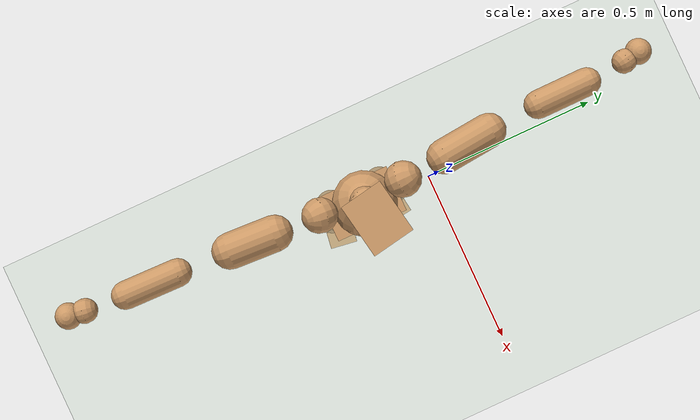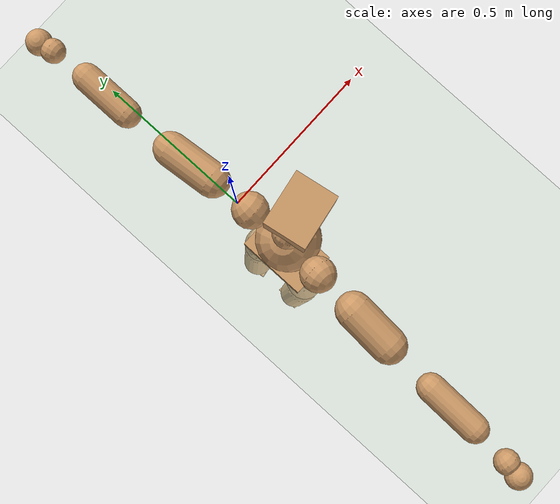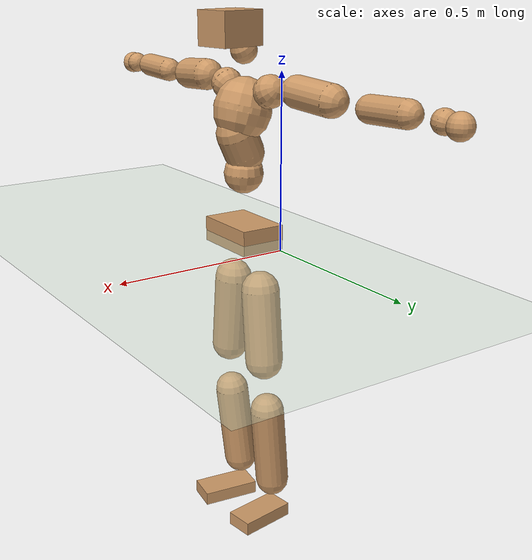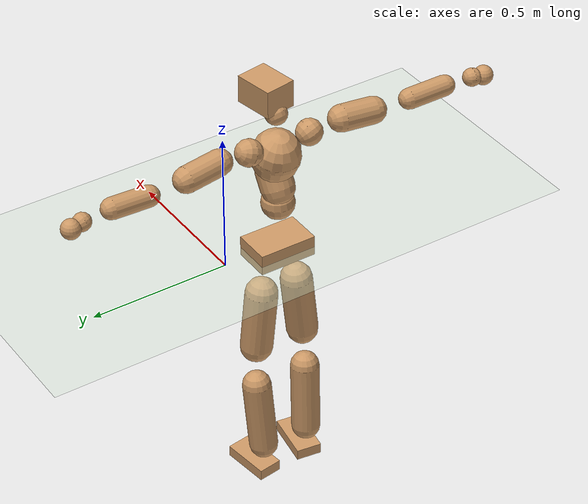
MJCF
<mujoco model="humanoid">
  <compiler coordinate="local" angle="radian"/>
  <default>
    <joint damping="0.0" armature="0.01" stiffness="0.0" limited="true"/>
    <geom conaffinity="1" condim="3" contype="7" margin="0.001" rgba="0.8 0.6 .4 1"/>
  </default>
  <asset>
    <texture type="skybox" builtin="gradient" rgb1=".4 .5 .6" rgb2="0 0 0" width="100" height="100"/>
    <texture builtin="flat" height="1278" mark="cross" markrgb="1 1 1" name="texgeom" random="0.01" rgb1="0.8 0.6 0.4" rgb2="0.8 0.6 0.4" type="cube" width="127"/>
    <texture builtin="checker" height="100" name="texplane" rgb1="0 0 0" rgb2="0.8 0.8 0.8" type="2d" width="100"/>
    <material name="MatPlane" reflectance="0.5" shininess="1" specular="1" texrepeat="60 60" texture="texplane"/>
    <material name="geom" texture="texgeom" texuniform="true"/>
  </asset>
  <worldbody>
    <light cutoff="100" diffuse="1 1 1" dir="-0 0 -1.3" directional="true" exponent="1" pos="0 0 1.3" specular=".1 .1 .1"/>
    <geom conaffinity="1" condim="3" name="floor" pos="0 0 0" rgba="0.8 0.9 0.8 1" size="100 100 .2" type="plane" material="MatPlane"/>
    <body name="Pelvis" pos="-0.0012 -0.2028 0.0159">
      <freejoint name="Pelvis"/>
      <geom type="box" contype="1" conaffinity="1" density="5359.374986" pos="-0.0072 0.0000 -0.0124" size="0.0679 0.1052 0.0374" quat="1.0000 0.0000 0.0000 -0.0010" name="Pelvis"/>
      <body name="L_Hip" pos="-0.0186 0.0645 -0.0892">
        <joint name="L_Hip_x" type="hinge" pos="0 0 0" axis="1 0 0" stiffness="1600" damping="160" armature="0.02" range="-180.0000 180.0000"/>
        <joint name="L_Hip_y" type="hinge" pos="0 0 0" axis="0 1 0" stiffness="1600" damping="160" armature="0.02" range="-180.0000 180.0000"/>
        <joint name="L_Hip_z" type="hinge" pos="0 0 0" axis="0 0 1" stiffness="1600" damping="160" armature="0.02" range="-180.0000 180.0000"/>
        <geom type="capsule" contype="1" conaffinity="1" density="2040.816327" size="0.0578" fromto="0.0003 0.0085 -0.0874 0.0012 0.0303 -0.3112" name="L_Hip"/>
        <body name="L_Knee" pos="0.0016 0.0388 -0.3986">
          <joint name="L_Knee_x" type="hinge" pos="0 0 0" axis="1 0 0" stiffness="1600" damping="160" armature="0.02" range="-180.0000 180.0000"/>
          <joint name="L_Knee_y" type="hinge" pos="0 0 0" axis="0 1 0" stiffness="1600" damping="160" armature="0.02" range="-180.0000 180.0000"/>
          <joint name="L_Knee_z" type="hinge" pos="0 0 0" axis="0 0 1" stiffness="1600" damping="160" armature="0.02" range="-180.0000 180.0000"/>
          <geom type="capsule" contype="1" conaffinity="1" density="1234.567901" size="0.052" fromto="-0.0084 -0.0028 -0.0815 -0.0352 -0.0119 -0.3420" name="L_Knee"/>
          <body name="L_Ankle" pos="-0.0436 -0.0147 -0.4235">
            <joint name="L_Ankle_x" type="hinge" pos="0 0 0" axis="1 0 0" stiffness="1600" damping="160" armature="0.02" range="-180.0000 180.0000"/>
            <joint name="L_Ankle_y" type="hinge" pos="0 0 0" axis="0 1 0" stiffness="1600" damping="160" armature="0.02" range="-180.0000 180.0000"/>
            <joint name="L_Ankle_z" type="hinge" pos="0 0 0" axis="0 0 1" stiffness="1600" damping="160" armature="0.02" range="-180.0000 180.0000"/>
            <geom type="box" contype="1" conaffinity="1" density="999.999943" pos="0.0619 0.0084 -0.0291" size="0.0882 0.0439 0.021" quat="0.9977 0.0000 0.0000 0.0673" name="L_Ankle"/>
            <body name="L_Toe" pos="0.1239 0.0168 -0.0582">
              <joint name="L_Toe_x" type="hinge" pos="0 0 0" axis="1 0 0" stiffness="1000" damping="100" armature="0.02" range="-180.0000 180.0000"/>
              <joint name="L_Toe_y" type="hinge" pos="0 0 0" axis="0 1 0" stiffness="1000" damping="100" armature="0.02" range="-180.0000 180.0000"/>
              <joint name="L_Toe_z" type="hinge" pos="0 0 0" axis="0 0 1" stiffness="1000" damping="100" armature="0.02" range="-180.0000 180.0000"/>
              <geom type="box" contype="1" conaffinity="1" density="9249980.881501" pos="0.0000 0.0000 0.0282" size="0.0009 0.0022 0.001" quat="0.9973 0.0000 0.0000 0.0740" name="L_Toe"/>
            </body>
          </body>
        </body>
      </body>
      <body name="R_Hip" pos="-0.014 -0.0617 -0.0876">
        <joint name="R_Hip_x" type="hinge" pos="0 0 0" axis="1 0 0" stiffness="1600" damping="160" armature="0.02" range="-180.0000 180.0000"/>
        <joint name="R_Hip_y" type="hinge" pos="0 0 0" axis="0 1 0" stiffness="1600" damping="160" armature="0.02" range="-180.0000 180.0000"/>
        <joint name="R_Hip_z" type="hinge" pos="0 0 0" axis="0 0 1" stiffness="1600" damping="160" armature="0.02" range="-180.0000 180.0000"/>
        <geom type="capsule" contype="1" conaffinity="1" density="2040.816327" size="0.057" fromto="-0.0005 -0.0094 -0.0865 -0.0017 -0.0346 -0.3186" name="R_Hip"/>
        <body name="R_Knee" pos="-0.0021 -0.044 -0.4051">
          <joint name="R_Knee_x" type="hinge" pos="0 0 0" axis="1 0 0" stiffness="1600" damping="160" armature="0.02" range="-180.0000 180.0000"/>
          <joint name="R_Knee_y" type="hinge" pos="0 0 0" axis="0 1 0" stiffness="1600" damping="160" armature="0.02" range="-180.0000 180.0000"/>
          <joint name="R_Knee_z" type="hinge" pos="0 0 0" axis="0 0 1" stiffness="1600" damping="160" armature="0.02" range="-180.0000 180.0000"/>
          <geom type="capsule" contype="1" conaffinity="1" density="1234.567901" size="0.0523" fromto="-0.0080 0.0034 -0.0818 -0.0331 0.0140 -0.3395" name="R_Knee"/>
          <body name="R_Ankle" pos="-0.041 0.0174 -0.4214">
            <joint name="R_Ankle_x" type="hinge" pos="0 0 0" axis="1 0 0" stiffness="1600" damping="160" armature="0.02" range="-180.0000 180.0000"/>
            <joint name="R_Ankle_y" type="hinge" pos="0 0 0" axis="0 1 0" stiffness="1600" damping="160" armature="0.02" range="-180.0000 180.0000"/>
            <joint name="R_Ankle_z" type="hinge" pos="0 0 0" axis="0 0 1" stiffness="1600" damping="160" armature="0.02" range="-180.0000 180.0000"/>
            <geom type="box" contype="1" conaffinity="1" density="999.999989" pos="0.0635 -0.0094 -0.0247" size="0.0897 0.0467 0.0205" quat="0.9973 0.0000 0.0000 -0.0731" name="R_Ankle"/>
            <body name="R_Toe" pos="0.1271 -0.0187 -0.0494">
              <joint name="R_Toe_x" type="hinge" pos="0 0 0" axis="1 0 0" stiffness="1000" damping="100" armature="0.02" range="-180.0000 180.0000"/>
              <joint name="R_Toe_y" type="hinge" pos="0 0 0" axis="0 1 0" stiffness="1000" damping="100" armature="0.02" range="-180.0000 180.0000"/>
              <joint name="R_Toe_z" type="hinge" pos="0 0 0" axis="0 0 1" stiffness="1000" damping="100" armature="0.02" range="-180.0000 180.0000"/>
              <geom type="box" contype="1" conaffinity="1" density="8782181.682605" pos="0.0000 0.0000 0.0267" size="0.0009 0.0023 0.0011" quat="0.9979 0.0000 0.0000 -0.0644" name="R_Toe"/>
            </body>
          </body>
        </body>
      </body>
      <body name="Torso" pos="-0.0107 -0.0027 0.1024">
        <joint name="Torso_x" type="hinge" pos="0 0 0" axis="1 0 0" stiffness="2000" damping="200" armature="0.02" range="-180.0000 180.0000"/>
        <joint name="Torso_y" type="hinge" pos="0 0 0" axis="0 1 0" stiffness="2000" damping="200" armature="0.02" range="-180.0000 180.0000"/>
        <joint name="Torso_z" type="hinge" pos="0 0 0" axis="0 0 1" stiffness="2000" damping="200" armature="0.02" range="-180.0000 180.0000"/>
        <geom type="capsule" contype="1" conaffinity="1" density="2040.816327" size="0.0591" fromto="0.0016 0.0017 0.0662 0.0016 0.0018 0.0682" name="Torso"/>
        <body name="Spine" pos="0.0032 0.0035 0.1344">
          <joint name="Spine_x" type="hinge" pos="0 0 0" axis="1 0 0" stiffness="2000" damping="200" armature="0.02" range="-180.0000 180.0000"/>
          <joint name="Spine_y" type="hinge" pos="0 0 0" axis="0 1 0" stiffness="2000" damping="200" armature="0.02" range="-180.0000 180.0000"/>
          <joint name="Spine_z" type="hinge" pos="0 0 0" axis="0 0 1" stiffness="2000" damping="200" armature="0.02" range="-180.0000 180.0000"/>
          <geom type="capsule" contype="1" conaffinity="1" density="2040.816327" size="0.0598" fromto="0.0262 0.0031 0.0537 -0.0029 -0.0003 -0.0059" name="Spine"/>
          <body name="Chest" pos="0.0233 0.0028 0.0478">
            <joint name="Chest_x" type="hinge" pos="0 0 0" axis="1 0 0" stiffness="2000" damping="200" armature="0.02" range="-180.0000 180.0000"/>
            <joint name="Chest_y" type="hinge" pos="0 0 0" axis="0 1 0" stiffness="2000" damping="200" armature="0.02" range="-180.0000 180.0000"/>
            <joint name="Chest_z" type="hinge" pos="0 0 0" axis="0 0 1" stiffness="2000" damping="200" armature="0.02" range="-180.0000 180.0000"/>
            <geom type="capsule" contype="1" conaffinity="1" density="2040.816327" size="0.0847" fromto="-0.0225 -0.0007 0.0817 -0.0178 -0.0006 0.0646" name="Chest"/>
            <body name="Neck" pos="-0.0476 -0.0024 0.2084">
              <joint name="Neck_x" type="hinge" pos="0 0 0" axis="1 0 0" stiffness="1000" damping="100" armature="0.02" range="-180.0000 180.0000"/>
              <joint name="Neck_y" type="hinge" pos="0 0 0" axis="0 1 0" stiffness="1000" damping="100" armature="0.02" range="-180.0000 180.0000"/>
              <joint name="Neck_z" type="hinge" pos="0 0 0" axis="0 0 1" stiffness="1000" damping="100" armature="0.02" range="-180.0000 180.0000"/>
              <geom type="capsule" contype="1" conaffinity="1" density="1000" size="0.039" fromto="0.0233 0.0032 0.0297 0.0245 0.0034 0.0313" name="Neck"/>
              <body name="Head" pos="0.0477 0.0066 0.0611">
                <joint name="Head_x" type="hinge" pos="0 0 0" axis="1 0 0" stiffness="1000" damping="100" armature="0.02" range="-180.0000 180.0000"/>
                <joint name="Head_y" type="hinge" pos="0 0 0" axis="0 1 0" stiffness="1000" damping="100" armature="0.02" range="-180.0000 180.0000"/>
                <joint name="Head_z" type="hinge" pos="0 0 0" axis="0 0 1" stiffness="1000" damping="100" armature="0.02" range="-180.0000 180.0000"/>
                <geom type="box" contype="1" conaffinity="1" density="2249.999844" pos="0.0249 0.0043 0.0315" size="0.0705 0.0559 0.049" quat="0.9964 0.0000 0.0000 0.0853" name="Head"/>
              </body>
            </body>
            <body name="L_Thorax" pos="-0.0348 0.0707 0.1164">
              <joint name="L_Thorax_x" type="hinge" pos="0 0 0" axis="1 0 0" stiffness="1000" damping="100" armature="0.02" range="-180.0000 180.0000"/>
              <joint name="L_Thorax_y" type="hinge" pos="0 0 0" axis="0 1 0" stiffness="1000" damping="100" armature="0.02" range="-180.0000 180.0000"/>
              <joint name="L_Thorax_z" type="hinge" pos="0 0 0" axis="0 0 1" stiffness="1000" damping="100" armature="0.02" range="-180.0000 180.0000"/>
              <geom type="capsule" contype="1" conaffinity="1" density="1000" size="0.0473" fromto="-0.0009 0.0436 0.0182 -0.0009 0.0412 0.0172" name="L_Thorax"/>
              <body name="L_Shoulder" pos="-0.0018 0.0848 0.0354">
                <joint name="L_Shoulder_x" type="hinge" pos="0 0 0" axis="1 0 0" stiffness="1000" damping="100" armature="0.02" range="-720.0000 720.0000"/>
                <joint name="L_Shoulder_y" type="hinge" pos="0 0 0" axis="0 1 0" stiffness="1000" damping="100" armature="0.02" range="-720.0000 720.0000"/>
                <joint name="L_Shoulder_z" type="hinge" pos="0 0 0" axis="0 0 1" stiffness="1000" damping="100" armature="0.02" range="-720.0000 720.0000"/>
                <geom type="capsule" contype="1" conaffinity="1" density="1000" size="0.0453" fromto="-0.0070 0.0748 -0.0053 -0.0193 0.2056 -0.0146" name="L_Shoulder"/>
                <body name="L_Elbow" pos="-0.0263 0.2804 -0.0199">
                  <joint name="L_Elbow_x" type="hinge" pos="0 0 0" axis="1 0 0" stiffness="1000" damping="100" armature="0.02" range="-720.0000 720.0000"/>
                  <joint name="L_Elbow_y" type="hinge" pos="0 0 0" axis="0 1 0" stiffness="1000" damping="100" armature="0.02" range="-720.0000 720.0000"/>
                  <joint name="L_Elbow_z" type="hinge" pos="0 0 0" axis="0 0 1" stiffness="1000" damping="100" armature="0.02" range="-720.0000 720.0000"/>
                  <geom type="capsule" contype="1" conaffinity="1" density="1000" size="0.0366" fromto="-0.0002 0.0666 0.0026 -0.0006 0.2016 0.0080" name="L_Elbow"/>
                  <body name="L_Wrist" pos="-0.0008 0.2681 0.0107">
                    <joint name="L_Wrist_x" type="hinge" pos="0 0 0" axis="1 0 0" stiffness="600" damping="60" armature="0.02" range="-180.0000 180.0000"/>
                    <joint name="L_Wrist_y" type="hinge" pos="0 0 0" axis="0 1 0" stiffness="600" damping="60" armature="0.02" range="-180.0000 180.0000"/>
                    <joint name="L_Wrist_z" type="hinge" pos="0 0 0" axis="0 0 1" stiffness="600" damping="60" armature="0.02" range="-180.0000 180.0000"/>
                    <geom type="capsule" contype="1" conaffinity="1" density="1000" size="0.0314" fromto="-0.0071 0.0418 -0.0052 -0.0074 0.0437 -0.0055" name="L_Wrist"/>
                    <body name="L_Hand" pos="-0.0145 0.0855 -0.0107">
                      <joint name="L_Hand_x" type="hinge" pos="0 0 0" axis="1 0 0" stiffness="600" damping="60" armature="0.02" range="-180.0000 180.0000"/>
                      <joint name="L_Hand_y" type="hinge" pos="0 0 0" axis="0 1 0" stiffness="600" damping="60" armature="0.02" range="-180.0000 180.0000"/>
                      <joint name="L_Hand_z" type="hinge" pos="0 0 0" axis="0 0 1" stiffness="600" damping="60" armature="0.02" range="-180.0000 180.0000"/>
                      <geom type="sphere" contype="1" conaffinity="1" density="1000" size="0.0341" pos="0.0000 0.0000 0.0000" name="L_Hand"/>
                    </body>
                  </body>
                </body>
              </body>
            </body>
            <body name="R_Thorax" pos="-0.0385 -0.0722 0.1142">
              <joint name="R_Thorax_x" type="hinge" pos="0 0 0" axis="1 0 0" stiffness="1000" damping="100" armature="0.02" range="-180.0000 180.0000"/>
              <joint name="R_Thorax_y" type="hinge" pos="0 0 0" axis="0 1 0" stiffness="1000" damping="100" armature="0.02" range="-180.0000 180.0000"/>
              <joint name="R_Thorax_z" type="hinge" pos="0 0 0" axis="0 0 1" stiffness="1000" damping="100" armature="0.02" range="-180.0000 180.0000"/>
              <geom type="capsule" contype="1" conaffinity="1" density="1000" size="0.0462" fromto="-0.0025 -0.0440 0.0180 -0.0026 -0.0458 0.0188" name="R_Thorax"/>
              <body name="R_Shoulder" pos="-0.005 -0.0898 0.0368">
                <joint name="R_Shoulder_x" type="hinge" pos="0 0 0" axis="1 0 0" stiffness="1000" damping="100" armature="0.02" range="-720.0000 720.0000"/>
                <joint name="R_Shoulder_y" type="hinge" pos="0 0 0" axis="0 1 0" stiffness="1000" damping="100" armature="0.02" range="-720.0000 720.0000"/>
                <joint name="R_Shoulder_z" type="hinge" pos="0 0 0" axis="0 0 1" stiffness="1000" damping="100" armature="0.02" range="-720.0000 720.0000"/>
                <geom type="capsule" contype="1" conaffinity="1" density="1000" size="0.0473" fromto="-0.0044 -0.0770 -0.0055 -0.0115 -0.1988 -0.0141" name="R_Shoulder"/>
                <body name="R_Elbow" pos="-0.0159 -0.2757 -0.0196">
                  <joint name="R_Elbow_x" type="hinge" pos="0 0 0" axis="1 0 0" stiffness="1000" damping="100" armature="0.02" range="-720.0000 720.0000"/>
                  <joint name="R_Elbow_y" type="hinge" pos="0 0 0" axis="0 1 0" stiffness="1000" damping="100" armature="0.02" range="-720.0000 720.0000"/>
                  <joint name="R_Elbow_z" type="hinge" pos="0 0 0" axis="0 0 1" stiffness="1000" damping="100" armature="0.02" range="-720.0000 720.0000"/>
                  <geom type="capsule" contype="1" conaffinity="1" density="1000" size="0.0367" fromto="-0.0017 -0.0666 0.0017 -0.0053 -0.2102 0.0055" name="R_Elbow"/>
                  <body name="R_Wrist" pos="-0.0069 -0.2768 0.0072">
                    <joint name="R_Wrist_x" type="hinge" pos="0 0 0" axis="1 0 0" stiffness="600" damping="60" armature="0.02" range="-180.0000 180.0000"/>
                    <joint name="R_Wrist_y" type="hinge" pos="0 0 0" axis="0 1 0" stiffness="600" damping="60" armature="0.02" range="-180.0000 180.0000"/>
                    <joint name="R_Wrist_z" type="hinge" pos="0 0 0" axis="0 0 1" stiffness="600" damping="60" armature="0.02" range="-180.0000 180.0000"/>
                    <geom type="capsule" contype="1" conaffinity="1" density="1000" size="0.0324" fromto="-0.0056 -0.0428 -0.0039 -0.0059 -0.0448 -0.0041" name="R_Wrist"/>
                    <body name="R_Hand" pos="-0.0115 -0.0877 -0.008">
                      <joint name="R_Hand_x" type="hinge" pos="0 0 0" axis="1 0 0" stiffness="600" damping="60" armature="0.02" range="-180.0000 180.0000"/>
                      <joint name="R_Hand_y" type="hinge" pos="0 0 0" axis="0 1 0" stiffness="600" damping="60" armature="0.02" range="-180.0000 180.0000"/>
                      <joint name="R_Hand_z" type="hinge" pos="0 0 0" axis="0 0 1" stiffness="600" damping="60" armature="0.02" range="-180.0000 180.0000"/>
                      <geom type="sphere" contype="1" conaffinity="1" density="1000" size="0.0347" pos="0.0000 0.0000 0.0000" name="R_Hand"/>
                    </body>
                  </body>
                </body>
              </body>
            </body>
          </body>
        </body>
      </body>
    </body>
  </worldbody>
  <actuator>
    <motor name="L_Hip_x" joint="L_Hip_x" gear="500"/>
    <motor name="L_Hip_y" joint="L_Hip_y" gear="500"/>
    <motor name="L_Hip_z" joint="L_Hip_z" gear="500"/>
    <motor name="L_Knee_x" joint="L_Knee_x" gear="500"/>
    <motor name="L_Knee_y" joint="L_Knee_y" gear="500"/>
    <motor name="L_Knee_z" joint="L_Knee_z" gear="500"/>
    <motor name="L_Ankle_x" joint="L_Ankle_x" gear="500"/>
    <motor name="L_Ankle_y" joint="L_Ankle_y" gear="500"/>
    <motor name="L_Ankle_z" joint="L_Ankle_z" gear="500"/>
    <motor name="L_Toe_x" joint="L_Toe_x" gear="500"/>
    <motor name="L_Toe_y" joint="L_Toe_y" gear="500"/>
    <motor name="L_Toe_z" joint="L_Toe_z" gear="500"/>
    <motor name="R_Hip_x" joint="R_Hip_x" gear="500"/>
    <motor name="R_Hip_y" joint="R_Hip_y" gear="500"/>
    <motor name="R_Hip_z" joint="R_Hip_z" gear="500"/>
    <motor name="R_Knee_x" joint="R_Knee_x" gear="500"/>
    <motor name="R_Knee_y" joint="R_Knee_y" gear="500"/>
    <motor name="R_Knee_z" joint="R_Knee_z" gear="500"/>
    <motor name="R_Ankle_x" joint="R_Ankle_x" gear="500"/>
    <motor name="R_Ankle_y" joint="R_Ankle_y" gear="500"/>
    <motor name="R_Ankle_z" joint="R_Ankle_z" gear="500"/>
    <motor name="R_Toe_x" joint="R_Toe_x" gear="500"/>
    <motor name="R_Toe_y" joint="R_Toe_y" gear="500"/>
    <motor name="R_Toe_z" joint="R_Toe_z" gear="500"/>
    <motor name="Torso_x" joint="Torso_x" gear="500"/>
    <motor name="Torso_y" joint="Torso_y" gear="500"/>
    <motor name="Torso_z" joint="Torso_z" gear="500"/>
    <motor name="Spine_x" joint="Spine_x" gear="500"/>
    <motor name="Spine_y" joint="Spine_y" gear="500"/>
    <motor name="Spine_z" joint="Spine_z" gear="500"/>
    <motor name="Chest_x" joint="Chest_x" gear="500"/>
    <motor name="Chest_y" joint="Chest_y" gear="500"/>
    <motor name="Chest_z" joint="Chest_z" gear="500"/>
    <motor name="Neck_x" joint="Neck_x" gear="500"/>
    <motor name="Neck_y" joint="Neck_y" gear="500"/>
    <motor name="Neck_z" joint="Neck_z" gear="500"/>
    <motor name="Head_x" joint="Head_x" gear="500"/>
    <motor name="Head_y" joint="Head_y" gear="500"/>
    <motor name="Head_z" joint="Head_z" gear="500"/>
    <motor name="L_Thorax_x" joint="L_Thorax_x" gear="500"/>
    <motor name="L_Thorax_y" joint="L_Thorax_y" gear="500"/>
    <motor name="L_Thorax_z" joint="L_Thorax_z" gear="500"/>
    <motor name="L_Shoulder_x" joint="L_Shoulder_x" gear="500"/>
    <motor name="L_Shoulder_y" joint="L_Shoulder_y" gear="500"/>
    <motor name="L_Shoulder_z" joint="L_Shoulder_z" gear="500"/>
    <motor name="L_Elbow_x" joint="L_Elbow_x" gear="500"/>
    <motor name="L_Elbow_y" joint="L_Elbow_y" gear="500"/>
    <motor name="L_Elbow_z" joint="L_Elbow_z" gear="500"/>
    <motor name="L_Wrist_x" joint="L_Wrist_x" gear="500"/>
    <motor name="L_Wrist_y" joint="L_Wrist_y" gear="500"/>
    <motor name="L_Wrist_z" joint="L_Wrist_z" gear="500"/>
    <motor name="L_Hand_x" joint="L_Hand_x" gear="500"/>
    <motor name="L_Hand_y" joint="L_Hand_y" gear="500"/>
    <motor name="L_Hand_z" joint="L_Hand_z" gear="500"/>
    <motor name="R_Thorax_x" joint="R_Thorax_x" gear="500"/>
    <motor name="R_Thorax_y" joint="R_Thorax_y" gear="500"/>
    <motor name="R_Thorax_z" joint="R_Thorax_z" gear="500"/>
    <motor name="R_Shoulder_x" joint="R_Shoulder_x" gear="500"/>
    <motor name="R_Shoulder_y" joint="R_Shoulder_y" gear="500"/>
    <motor name="R_Shoulder_z" joint="R_Shoulder_z" gear="500"/>
    <motor name="R_Elbow_x" joint="R_Elbow_x" gear="500"/>
    <motor name="R_Elbow_y" joint="R_Elbow_y" gear="500"/>
    <motor name="R_Elbow_z" joint="R_Elbow_z" gear="500"/>
    <motor name="R_Wrist_x" joint="R_Wrist_x" gear="500"/>
    <motor name="R_Wrist_y" joint="R_Wrist_y" gear="500"/>
    <motor name="R_Wrist_z" joint="R_Wrist_z" gear="500"/>
    <motor name="R_Hand_x" joint="R_Hand_x" gear="500"/>
    <motor name="R_Hand_y" joint="R_Hand_y" gear="500"/>
    <motor name="R_Hand_z" joint="R_Hand_z" gear="500"/>
  </actuator>
  <contact>
    <exclude body1="Torso" body2="Chest"/>
    <exclude body1="Head" body2="Chest"/>
    <exclude body1="R_Knee" body2="R_Toe"/>
    <exclude body1="R_Knee" body2="L_Ankle"/>
    <exclude body1="R_Knee" body2="L_Toe"/>
    <exclude body1="L_Knee" body2="L_Toe"/>
    <exclude body1="L_Knee" body2="R_Ankle"/>
    <exclude body1="L_Knee" body2="R_Toe"/>
    <exclude body1="L_Shoulder" body2="Chest"/>
    <exclude body1="R_Shoulder" body2="Chest"/>
  </contact>
  <sensor/>
  <size njmax="700" nconmax="700"/>
</mujoco>
